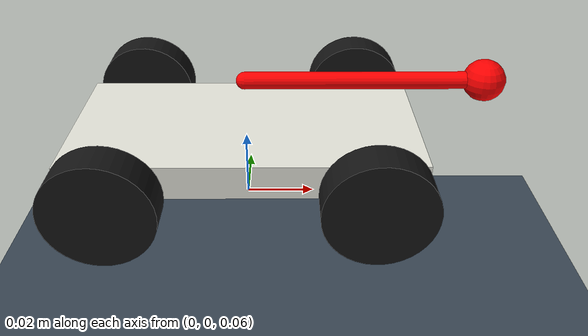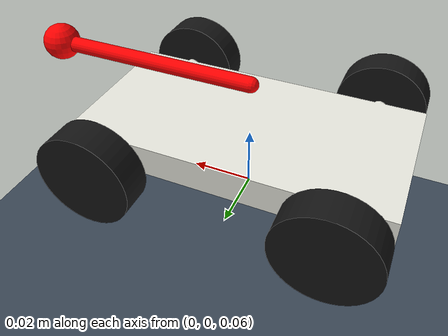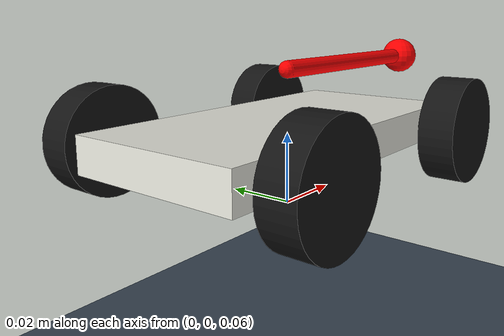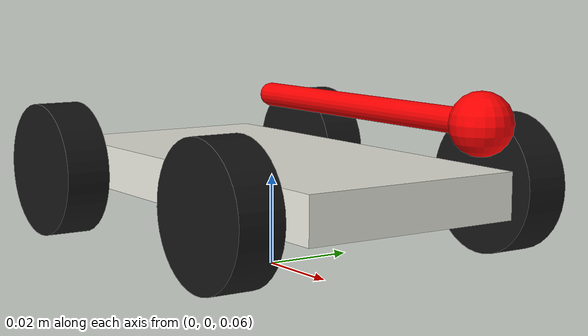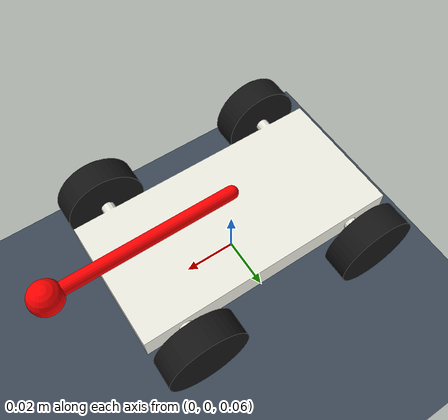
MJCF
<mujoco model="sw2urdf_test_car_view">
  <compiler angle="radian" meshdir="meshes"/>

  <option timestep="0.002" gravity="0 0 -9.81"/>

  <default>
    <joint damping="0.001" armature="0.00001"/>
    <geom friction="1.2 0.02 0.001"/>
  </default>

  <asset>
    <mesh name="base_link_mesh" file="base_link.STL"/>
    <mesh name="br_wheel_mesh" file="BRWHEEL.STL"/>
    <mesh name="bl_wheel_mesh" file="BLWHEEL.STL"/>
    <mesh name="fr_wheel_mesh" file="FRWHEEL.STL"/>
    <mesh name="fl_wheel_mesh" file="FLWHEEL.STL"/>

    <texture name="grid" type="2d" builtin="checker" width="512" height="512"
             rgb1="0.18 0.22 0.27" rgb2="0.28 0.34 0.40"/>
    <material name="grid" texture="grid" texrepeat="8 8" reflectance="0.15"/>
    <material name="body_white" rgba="0.92 0.92 0.88 1"/>
    <material name="wheel_dark" rgba="0.08 0.08 0.08 1"/>
  </asset>

  <worldbody>
    <light pos="0 -1.5 1.5" dir="0 1 -1" diffuse="0.8 0.8 0.8"/>
    <camera name="view" pos="0.18 -0.35 0.18" xyaxes="0.88 0.48 0 -0.18 0.33 0.93"/>
    <geom name="floor" type="plane" size="1 1 0.02" material="grid"/>

    <body name="base_link" pos="0 0 0.08">
      <freejoint/>
      <inertial pos="-1.03650438129083e-17 -1.61176583042564e-21 -3.07775466843409e-19"
                mass="0.0503926990816987"
                fullinertia="1.113174372927e-05 5.28628001043509e-05 4.25656168930446e-05 -5.2773480857275e-22 -1.05982515983357e-21 -3.30920467085792e-40"/>
      <geom name="base_link_visual" type="mesh" mesh="base_link_mesh"
            material="body_white" contype="0" conaffinity="0"/>
      <geom name="base_link_collision" type="mesh" mesh="base_link_mesh"
            rgba="0.92 0.92 0.88 0.18"/>
      <geom name="x_forward_axis" type="capsule" fromto="0 0 0.018 0.065 0 0.018"
            size="0.0025" rgba="1 0 0 1" contype="0" conaffinity="0"/>
      <geom name="x_forward_tip" type="sphere" pos="0.068 0 0.018"
            size="0.006" rgba="1 0 0 1" contype="0" conaffinity="0"/>

      <body name="BRWHEEL" pos="-0.035 -0.03 0"
            quat="0.3933450129 -0.5876034923 0.5876056507 -0.3933464578">
        <joint name="BRJ" type="hinge" axis="-1 0 0" limited="false"/>
        <inertial pos="0.005 0 0" mass="0.0070686"
                  fullinertia="7.9522e-07 4.5651e-07 4.5651e-07 -4.8981e-24 3.064e-23 2.647e-23"/>
        <geom name="BRWHEEL_visual" type="mesh" mesh="br_wheel_mesh"
              material="wheel_dark" contype="0" conaffinity="0"/>
        <geom name="BRWHEEL_collision" type="mesh" mesh="br_wheel_mesh"
              rgba="0.08 0.08 0.08 0.25"/>
      </body>

      <body name="BLWHEEL" pos="-0.035 0.03 0"
            quat="0.4619312936 0.5353668307 0.5353687972 0.4619329904">
        <joint name="BLJ" type="hinge" axis="1 0 0" limited="false"/>
        <inertial pos="0.005 1.73472347597681e-18 6.93889390390723e-18"
                  mass="0.00706858347057703"
                  fullinertia="7.95215640439917e-07 4.56512682474767e-07 4.56512682474767e-07 -1.0910133145124e-24 1.61539049475061e-25 -1.32348898008484e-23"/>
        <geom name="BLWHEEL_visual" type="mesh" mesh="bl_wheel_mesh"
              material="wheel_dark" contype="0" conaffinity="0"/>
        <geom name="BLWHEEL_collision" type="mesh" mesh="bl_wheel_mesh"
              rgba="0.08 0.08 0.08 0.25"/>
      </body>

      <body name="FRWHEEL" pos="0.035 -0.03 0"
            quat="0.3553256318 -0.6113443046 0.6113465502 -0.355326937">
        <joint name="FRJ" type="hinge" axis="-1 0 0" limited="false"/>
        <inertial pos="0.005 0 0" mass="0.00706858347057703"
                  fullinertia="7.95215640439916e-07 4.56512682474767e-07 4.56512682474767e-07 1.29129150775348e-23 1.83956129535077e-23 3.97046694025453e-23"/>
        <geom name="FRWHEEL_visual" type="mesh" mesh="fr_wheel_mesh"
              material="wheel_dark" contype="0" conaffinity="0"/>
        <geom name="FRWHEEL_collision" type="mesh" mesh="fr_wheel_mesh"
              rgba="0.08 0.08 0.08 0.25"/>
      </body>

      <body name="FLWHEEL" pos="0.035 0.03 0"
            quat="0.3561506226 -0.6108640581 0.6108663019 -0.3561519308">
        <joint name="FLJ" type="hinge" axis="-1 0 0" limited="false"/>
        <inertial pos="-0.005 0 0" mass="0.00706858347057703"
                  fullinertia="7.95215640439916e-07 4.56512682474767e-07 4.56512682474767e-07 -4.61931754064618e-24 4.31118156006129e-23 -3.15779106970461e-40"/>
        <geom name="FLWHEEL_visual" type="mesh" mesh="fl_wheel_mesh"
              material="wheel_dark" contype="0" conaffinity="0"/>
        <geom name="FLWHEEL_collision" type="mesh" mesh="fl_wheel_mesh"
              rgba="0.08 0.08 0.08 0.25"/>
      </body>
    </body>
  </worldbody>
</mujoco>
